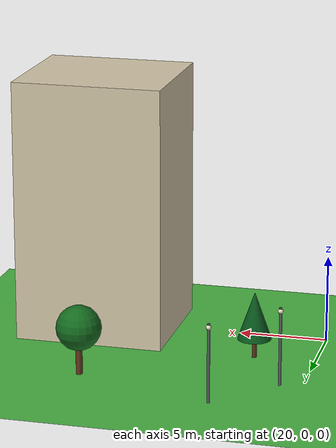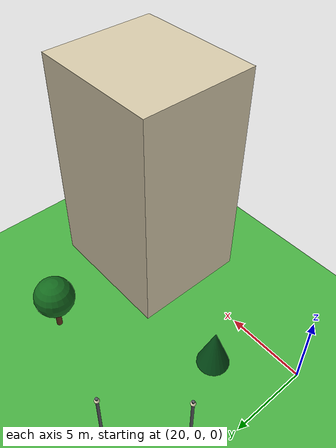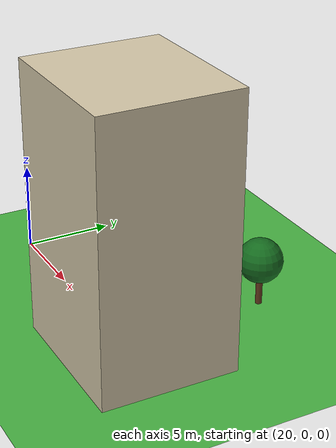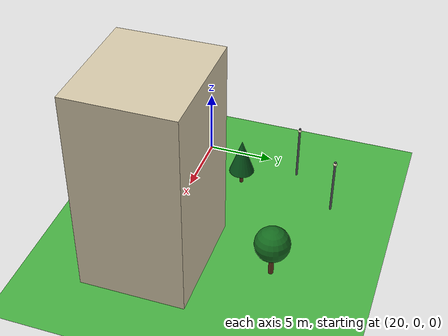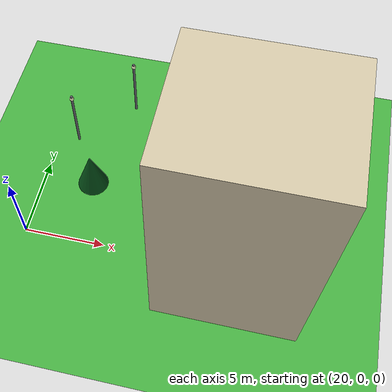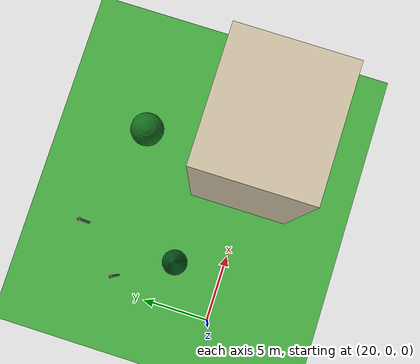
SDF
<sdf version="1.10">
 <world name="city_second">
  <model name="ground_plane">
   <static>true</static>
   <link name="link">
    <collision name="collision">
     <geometry><plane><normal>0 0 1</normal><size>300 300</size></plane></geometry>
    </collision>
    <visual name="visual">
     <geometry><plane><normal>0 0 1</normal><size>300 300</size></plane></geometry>
     <material>
      <ambient>0.280000001 0.689999998 0.25999999 1</ambient>
      <diffuse>0.280000001 0.689999998 0.25999999 1</diffuse>
      <specular>0.0299999993 0.0299999993 0.0299999993 1</specular>
     </material>
    </visual>
    <inertial>
     <mass>1</mass>
     <inertia><ixx>1</ixx><ixy>0</ixy><ixz>0</ixz><iyy>1</iyy><iyz>0</iyz><izz>1</izz></inertia>
    </inertial>
   </link>
  </model>
  <model name="house_2_3_1">
   <static>true</static>
   <pose>32.993699999999997 0.30851699999999999 7.5 0 0 0</pose>
   <link name="link">
    <collision name="collision"><geometry><box><size>8.5 7.5 15</size></box></geometry></collision>
    <visual name="visual">
     <geometry><box><size>8.5 7.5 15</size></box></geometry>
     <material>
      <ambient>0.829999983 0.779999971 0.660000026 1</ambient>
      <diffuse>0.829999983 0.779999971 0.660000026 1</diffuse>
      <specular>0.0299999993 0.0299999993 0.0299999993 1</specular>
     </material>
    </visual>
    <inertial>
     <mass>1</mass>
     <inertia><ixx>1</ixx><ixy>0</ixy><ixz>0</ixz><iyy>1</iyy><iyz>0</iyz><izz>1</izz></inertia>
    </inertial>
   </link>
  </model>
  <model name="lamp_1_2_12">
   <static>true</static>
   <pose>24.347899999999999 10.8561 2.2000000000000002 0 0 0</pose>
   <link name="link">
    <collision name="collision">
     <geometry>
      <cylinder><radius>0.080000000000000002</radius><length>4.4000000000000004</length></cylinder>
     </geometry>
    </collision>
    <visual name="pole">
     <geometry>
      <cylinder><radius>0.080000000000000002</radius><length>4.4000000000000004</length></cylinder>
     </geometry>
     <material>
      <ambient>0.349999994 0.360000014 0.379999995 1</ambient>
      <diffuse>0.349999994 0.360000014 0.379999995 1</diffuse>
      <specular>0.0299999993 0.0299999993 0.0299999993 1</specular>
     </material>
    </visual>
    <visual name="lamp_head">
     <pose>0 0 2 0 0 0</pose>
     <geometry><sphere><radius>0.14000000000000001</radius></sphere></geometry>
     <material>
      <ambient>0.959999979 0.939999998 0.779999971 1</ambient>
      <diffuse>0.959999979 0.939999998 0.779999971 1</diffuse>
      <specular>0.0299999993 0.0299999993 0.0299999993 1</specular>
     </material>
    </visual>
    <inertial>
     <mass>1</mass>
     <inertia><ixx>1</ixx><ixy>0</ixy><ixz>0</ixz><iyy>1</iyy><iyz>0</iyz><izz>1</izz></inertia>
    </inertial>
   </link>
  </model>
  <model name="lamp_1_2_13">
   <static>true</static>
   <pose>21.219799999999999 7.4495699999999996 2.2000000000000002 0 0 0</pose>
   <link name="link">
    <collision name="collision">
     <geometry>
      <cylinder><radius>0.080000000000000002</radius><length>4.4000000000000004</length></cylinder>
     </geometry>
    </collision>
    <visual name="pole">
     <geometry>
      <cylinder><radius>0.080000000000000002</radius><length>4.4000000000000004</length></cylinder>
     </geometry>
     <material>
      <ambient>0.349999994 0.360000014 0.379999995 1</ambient>
      <diffuse>0.349999994 0.360000014 0.379999995 1</diffuse>
      <specular>0.0299999993 0.0299999993 0.0299999993 1</specular>
     </material>
    </visual>
    <visual name="lamp_head">
     <pose>0 0 2 0 0 0</pose>
     <geometry><sphere><radius>0.14000000000000001</radius></sphere></geometry>
     <material>
      <ambient>0.959999979 0.939999998 0.779999971 1</ambient>
      <diffuse>0.959999979 0.939999998 0.779999971 1</diffuse>
      <specular>0.0299999993 0.0299999993 0.0299999993 1</specular>
     </material>
    </visual>
    <inertial>
     <mass>1</mass>
     <inertia><ixx>1</ixx><ixy>0</ixy><ixz>0</ixz><iyy>1</iyy><iyz>0</iyz><izz>1</izz></inertia>
    </inertial>
   </link>
  </model>
  <model name="Oak tree_0">
   <static>true</static>
   <pose>32.146799999999999 8.4817300000000007 0 0 0 0</pose>
   <link name="link">
    <collision name="footprint">
     <pose>0 0 0.050000000000000003 0 0 0</pose>
     <geometry>
      <cylinder><radius>0.90000000000000002</radius><length>0.10000000000000001</length></cylinder>
     </geometry>
    </collision>
    <visual name="trunk">
     <pose>0 0 1.1000000000000001 0 0 0</pose>
     <geometry>
      <cylinder><radius>0.17999999999999999</radius><length>2.2000000000000002</length></cylinder>
     </geometry>
     <material>
      <ambient>0.379999995 0.219999999 0.109999999 1</ambient>
      <diffuse>0.379999995 0.219999999 0.109999999 1</diffuse>
      <specular>0.119999997 0.119999997 0.119999997 1</specular>
      <emissive>0 0 0 1</emissive>
     </material>
    </visual>
    <visual name="crown">
     <pose>0 0 2.6499999999999999 0 0 0</pose>
     <geometry><sphere><radius>1.25</radius></sphere></geometry>
     <material>
      <ambient>0.0799999982 0.419999987 0.119999997 1</ambient>
      <diffuse>0.0799999982 0.419999987 0.119999997 1</diffuse>
      <specular>0.119999997 0.119999997 0.119999997 1</specular>
      <emissive>0 0 0 1</emissive>
     </material>
    </visual>
    <inertial>
     <mass>1</mass>
     <inertia><ixx>1</ixx><ixy>0</ixy><ixz>0</ixz><iyy>1</iyy><iyz>0</iyz><izz>1</izz></inertia>
    </inertial>
   </link>
  </model>
  <model name="Pine Tree_9">
   <static>true</static>
   <pose>23.437200000000001 3.6228500000000001 0 0 0 0</pose>
   <link name="link">
    <collision name="footprint">
     <pose>0 0 0.050000000000000003 0 0 0</pose>
     <geometry>
      <cylinder><radius>0.65000000000000002</radius><length>0.10000000000000001</length></cylinder>
     </geometry>
    </collision>
    <visual name="trunk">
     <pose>0 0 0.90000000000000002 0 0 0</pose>
     <geometry><cylinder><radius>0.13</radius><length>1.8</length></cylinder></geometry>
     <material>
      <ambient>0.360000014 0.200000003 0.100000001 1</ambient>
      <diffuse>0.360000014 0.200000003 0.100000001 1</diffuse>
      <specular>0.119999997 0.119999997 0.119999997 1</specular>
      <emissive>0 0 0 1</emissive>
     </material>
    </visual>
    <visual name="crown">
     <pose>0 0 2.4500000000000002 0 0 0</pose>
     <geometry><cone><radius>0.94999999999999996</radius><length>2.7000000000000002</length></cone></geometry>
     <material>
      <ambient>0.0299999993 0.340000004 0.109999999 1</ambient>
      <diffuse>0.0299999993 0.340000004 0.109999999 1</diffuse>
      <specular>0.119999997 0.119999997 0.119999997 1</specular>
      <emissive>0 0 0 1</emissive>
     </material>
    </visual>
    <inertial>
     <mass>1</mass>
     <inertia><ixx>1</ixx><ixy>0</ixy><ixz>0</ixz><iyy>1</iyy><iyz>0</iyz><izz>1</izz></inertia>
    </inertial>
   </link>
  </model>
 </world>
</sdf>
